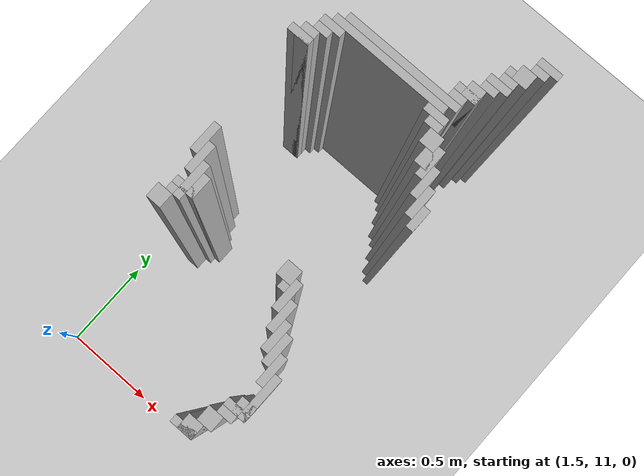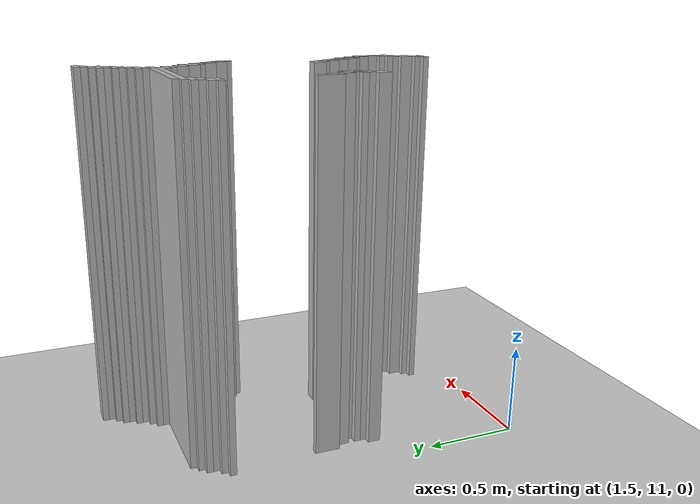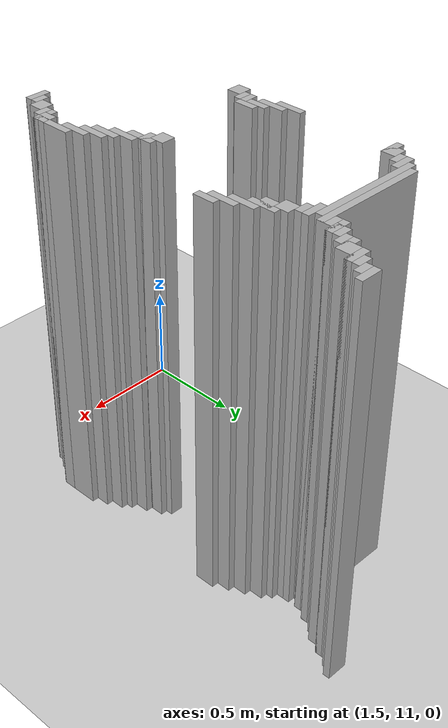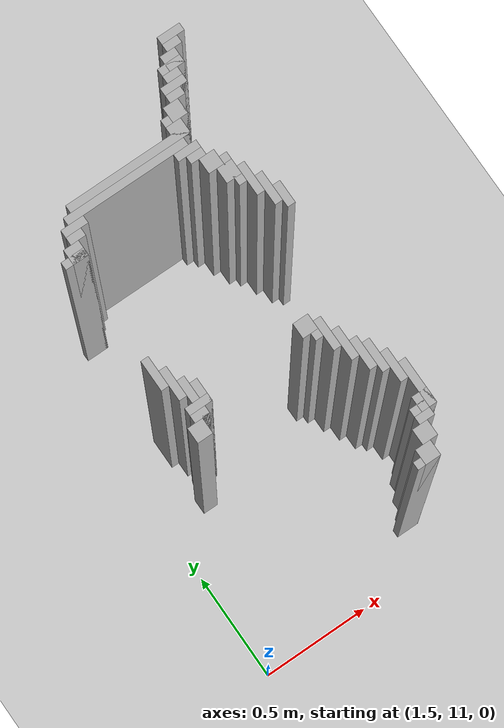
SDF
<sdf version="1.6">
 <world name="slam_world">
  <model name="ground_plane">
   <static>true</static>
   <link name="link">
    <collision name="collision">
     <geometry><plane><normal>0 0 1</normal><size>100 100</size></plane></geometry>
    </collision>
    <visual name="visual">
     <geometry><plane><normal>0 0 1</normal><size>100 100</size></plane></geometry>
     <material>
      <ambient>0.8 0.8 0.8 1</ambient>
      <diffuse>0.8 0.8 0.8 1</diffuse>
      <specular>0.8 0.8 0.8 1</specular>
     </material>
    </visual>
   </link>
  </model>
  <model name="wall_1427">
   <static>true</static>
   <pose>2.488399071925754 13.103248259860788 1.0 0 0 0</pose>
   <link name="link">
    <collision name="collision">
     <geometry><box><size>0.10440835266821345 0.03480278422273782 2.0</size></box></geometry>
    </collision>
    <visual name="visual">
     <geometry><box><size>0.10440835266821345 0.03480278422273782 2.0</size></box></geometry>
     <material><ambient>0.5 0.5 0.5 1</ambient><diffuse>0.7 0.7 0.7 1</diffuse></material>
    </visual>
   </link>
  </model>
  <model name="wall_1442">
   <static>true</static>
   <pose>2.470997679814385 13.06844547563805 1.0 0 0 0</pose>
   <link name="link">
    <collision name="collision">
     <geometry><box><size>0.06960556844547564 0.03480278422273782 2.0</size></box></geometry>
    </collision>
    <visual name="visual">
     <geometry><box><size>0.06960556844547564 0.03480278422273782 2.0</size></box></geometry>
     <material><ambient>0.5 0.5 0.5 1</ambient><diffuse>0.7 0.7 0.7 1</diffuse></material>
    </visual>
   </link>
  </model>
  <model name="wall_1449">
   <static>true</static>
   <pose>2.436194895591647 13.016241299303944 1.0 0 0 0</pose>
   <link name="link">
    <collision name="collision">
     <geometry><box><size>0.06960556844547564 0.06960556844547564 2.0</size></box></geometry>
    </collision>
    <visual name="visual">
     <geometry><box><size>0.06960556844547564 0.06960556844547564 2.0</size></box></geometry>
     <material><ambient>0.5 0.5 0.5 1</ambient><diffuse>0.7 0.7 0.7 1</diffuse></material>
    </visual>
   </link>
  </model>
  <model name="wall_1465">
   <static>true</static>
   <pose>2.4187935034802783 12.998839907192576 1.0 0 0 0</pose>
   <link name="link">
    <collision name="collision">
     <geometry><box><size>0.10440835266821345 0.03480278422273782 2.0</size></box></geometry>
    </collision>
    <visual name="visual">
     <geometry><box><size>0.10440835266821345 0.03480278422273782 2.0</size></box></geometry>
     <material><ambient>0.5 0.5 0.5 1</ambient><diffuse>0.7 0.7 0.7 1</diffuse></material>
    </visual>
   </link>
  </model>
  <model name="wall_1481">
   <static>true</static>
   <pose>2.4013921113689096 12.946635730858468 1.0 0 0 0</pose>
   <link name="link">
    <collision name="collision">
     <geometry><box><size>0.06960556844547564 0.06960556844547564 2.0</size></box></geometry>
    </collision>
    <visual name="visual">
     <geometry><box><size>0.06960556844547564 0.06960556844547564 2.0</size></box></geometry>
     <material><ambient>0.5 0.5 0.5 1</ambient><diffuse>0.7 0.7 0.7 1</diffuse></material>
    </visual>
   </link>
  </model>
  <model name="wall_1497">
   <static>true</static>
   <pose>2.3839907192575405 12.929234338747099 1.0 0 0 0</pose>
   <link name="link">
    <collision name="collision">
     <geometry><box><size>0.10440835266821345 0.03480278422273782 2.0</size></box></geometry>
    </collision>
    <visual name="visual">
     <geometry><box><size>0.10440835266821345 0.03480278422273782 2.0</size></box></geometry>
     <material><ambient>0.5 0.5 0.5 1</ambient><diffuse>0.7 0.7 0.7 1</diffuse></material>
    </visual>
   </link>
  </model>
  <model name="wall_1512">
   <static>true</static>
   <pose>2.3665893271461718 12.894431554524362 1.0 0 0 0</pose>
   <link name="link">
    <collision name="collision">
     <geometry><box><size>0.06960556844547564 0.03480278422273782 2.0</size></box></geometry>
    </collision>
    <visual name="visual">
     <geometry><box><size>0.06960556844547564 0.03480278422273782 2.0</size></box></geometry>
     <material><ambient>0.5 0.5 0.5 1</ambient><diffuse>0.7 0.7 0.7 1</diffuse></material>
    </visual>
   </link>
  </model>
  <model name="wall_1522">
   <static>true</static>
   <pose>2.331786542923434 12.842227378190255 1.0 0 0 0</pose>
   <link name="link">
    <collision name="collision">
     <geometry><box><size>0.06960556844547564 0.06960556844547564 2.0</size></box></geometry>
    </collision>
    <visual name="visual">
     <geometry><box><size>0.06960556844547564 0.06960556844547564 2.0</size></box></geometry>
     <material><ambient>0.5 0.5 0.5 1</ambient><diffuse>0.7 0.7 0.7 1</diffuse></material>
    </visual>
   </link>
  </model>
  <model name="wall_1538">
   <static>true</static>
   <pose>2.3143851508120648 12.824825986078885 1.0 0 0 0</pose>
   <link name="link">
    <collision name="collision">
     <geometry><box><size>0.10440835266821345 0.03480278422273782 2.0</size></box></geometry>
    </collision>
    <visual name="visual">
     <geometry><box><size>0.10440835266821345 0.03480278422273782 2.0</size></box></geometry>
     <material><ambient>0.5 0.5 0.5 1</ambient><diffuse>0.7 0.7 0.7 1</diffuse></material>
    </visual>
   </link>
  </model>
  <model name="wall_1553">
   <static>true</static>
   <pose>2.296983758700696 12.772621809744779 1.0 0 0 0</pose>
   <link name="link">
    <collision name="collision">
     <geometry><box><size>0.06960556844547564 0.06960556844547564 2.0</size></box></geometry>
    </collision>
    <visual name="visual">
     <geometry><box><size>0.06960556844547564 0.06960556844547564 2.0</size></box></geometry>
     <material><ambient>0.5 0.5 0.5 1</ambient><diffuse>0.7 0.7 0.7 1</diffuse></material>
    </visual>
   </link>
  </model>
  <model name="wall_1563">
   <static>true</static>
   <pose>2.053364269141531 12.75522041763341 1.0 0 0 0</pose>
   <link name="link">
    <collision name="collision">
     <geometry><box><size>0.5568445475638051 0.03480278422273782 2.0</size></box></geometry>
    </collision>
    <visual name="visual">
     <geometry><box><size>0.5568445475638051 0.03480278422273782 2.0</size></box></geometry>
     <material><ambient>0.5 0.5 0.5 1</ambient><diffuse>0.7 0.7 0.7 1</diffuse></material>
    </visual>
   </link>
  </model>
  <model name="wall_1576">
   <static>true</static>
   <pose>2.0185614849187936 12.720417633410673 1.0 0 0 0</pose>
   <link name="link">
    <collision name="collision">
     <geometry><box><size>0.5568445475638051 0.03480278422273782 2.0</size></box></geometry>
    </collision>
    <visual name="visual">
     <geometry><box><size>0.5568445475638051 0.03480278422273782 2.0</size></box></geometry>
     <material><ambient>0.5 0.5 0.5 1</ambient><diffuse>0.7 0.7 0.7 1</diffuse></material>
    </visual>
   </link>
  </model>
  <model name="wall_1587">
   <static>true</static>
   <pose>1.75754060324826 12.685614849187935 1.0 0 0 0</pose>
   <link name="link">
    <collision name="collision">
     <geometry><box><size>0.10440835266821345 0.03480278422273782 2.0</size></box></geometry>
    </collision>
    <visual name="visual">
     <geometry><box><size>0.10440835266821345 0.03480278422273782 2.0</size></box></geometry>
     <material><ambient>0.5 0.5 0.5 1</ambient><diffuse>0.7 0.7 0.7 1</diffuse></material>
    </visual>
   </link>
  </model>
  <model name="wall_1588">
   <static>true</static>
   <pose>2.279582366589327 12.685614849187935 1.0 0 0 0</pose>
   <link name="link">
    <collision name="collision">
     <geometry><box><size>0.10440835266821345 0.03480278422273782 2.0</size></box></geometry>
    </collision>
    <visual name="visual">
     <geometry><box><size>0.10440835266821345 0.03480278422273782 2.0</size></box></geometry>
     <material><ambient>0.5 0.5 0.5 1</ambient><diffuse>0.7 0.7 0.7 1</diffuse></material>
    </visual>
   </link>
  </model>
  <model name="wall_1600">
   <static>true</static>
   <pose>1.740139211136891 12.650812064965196 1.0 0 0 0</pose>
   <link name="link">
    <collision name="collision">
     <geometry><box><size>0.06960556844547564 0.03480278422273782 2.0</size></box></geometry>
    </collision>
    <visual name="visual">
     <geometry><box><size>0.06960556844547564 0.03480278422273782 2.0</size></box></geometry>
     <material><ambient>0.5 0.5 0.5 1</ambient><diffuse>0.7 0.7 0.7 1</diffuse></material>
    </visual>
   </link>
  </model>
  <model name="wall_1601">
   <static>true</static>
   <pose>2.296983758700696 12.650812064965196 1.0 0 0 0</pose>
   <link name="link">
    <collision name="collision">
     <geometry><box><size>0.06960556844547564 0.03480278422273782 2.0</size></box></geometry>
    </collision>
    <visual name="visual">
     <geometry><box><size>0.06960556844547564 0.03480278422273782 2.0</size></box></geometry>
     <material><ambient>0.5 0.5 0.5 1</ambient><diffuse>0.7 0.7 0.7 1</diffuse></material>
    </visual>
   </link>
  </model>
  <model name="wall_1611">
   <static>true</static>
   <pose>1.705336426914153 12.59860788863109 1.0 0 0 0</pose>
   <link name="link">
    <collision name="collision">
     <geometry><box><size>0.06960556844547564 0.06960556844547564 2.0</size></box></geometry>
    </collision>
    <visual name="visual">
     <geometry><box><size>0.06960556844547564 0.06960556844547564 2.0</size></box></geometry>
     <material><ambient>0.5 0.5 0.5 1</ambient><diffuse>0.7 0.7 0.7 1</diffuse></material>
    </visual>
   </link>
  </model>
  <model name="wall_1612">
   <static>true</static>
   <pose>2.331786542923434 12.59860788863109 1.0 0 0 0</pose>
   <link name="link">
    <collision name="collision">
     <geometry><box><size>0.06960556844547564 0.06960556844547564 2.0</size></box></geometry>
    </collision>
    <visual name="visual">
     <geometry><box><size>0.06960556844547564 0.06960556844547564 2.0</size></box></geometry>
     <material><ambient>0.5 0.5 0.5 1</ambient><diffuse>0.7 0.7 0.7 1</diffuse></material>
    </visual>
   </link>
  </model>
  <model name="wall_1624">
   <static>true</static>
   <pose>1.6879350348027842 12.581206496519721 1.0 0 0 0</pose>
   <link name="link">
    <collision name="collision">
     <geometry><box><size>0.10440835266821345 0.03480278422273782 2.0</size></box></geometry>
    </collision>
    <visual name="visual">
     <geometry><box><size>0.10440835266821345 0.03480278422273782 2.0</size></box></geometry>
     <material><ambient>0.5 0.5 0.5 1</ambient><diffuse>0.7 0.7 0.7 1</diffuse></material>
    </visual>
   </link>
  </model>
  <model name="wall_1625">
   <static>true</static>
   <pose>2.3839907192575405 12.529002320185615 1.0 0 0 0</pose>
   <link name="link">
    <collision name="collision">
     <geometry><box><size>0.03480278422273782 0.13921113689095127 2.0</size></box></geometry>
    </collision>
    <visual name="visual">
     <geometry><box><size>0.03480278422273782 0.13921113689095127 2.0</size></box></geometry>
     <material><ambient>0.5 0.5 0.5 1</ambient><diffuse>0.7 0.7 0.7 1</diffuse></material>
    </visual>
   </link>
  </model>
  <model name="wall_1637">
   <static>true</static>
   <pose>2.3665893271461718 12.529002320185615 1.0 0 0 0</pose>
   <link name="link">
    <collision name="collision">
     <geometry><box><size>0.06960556844547564 0.06960556844547564 2.0</size></box></geometry>
    </collision>
    <visual name="visual">
     <geometry><box><size>0.06960556844547564 0.06960556844547564 2.0</size></box></geometry>
     <material><ambient>0.5 0.5 0.5 1</ambient><diffuse>0.7 0.7 0.7 1</diffuse></material>
    </visual>
   </link>
  </model>
  <model name="wall_1649">
   <static>true</static>
   <pose>2.4187935034802783 12.459396751740138 1.0 0 0 0</pose>
   <link name="link">
    <collision name="collision">
     <geometry><box><size>0.03480278422273782 0.13921113689095127 2.0</size></box></geometry>
    </collision>
    <visual name="visual">
     <geometry><box><size>0.03480278422273782 0.13921113689095127 2.0</size></box></geometry>
     <material><ambient>0.5 0.5 0.5 1</ambient><diffuse>0.7 0.7 0.7 1</diffuse></material>
    </visual>
   </link>
  </model>
  <model name="wall_1670">
   <static>true</static>
   <pose>2.453596287703016 12.389791183294664 1.0 0 0 0</pose>
   <link name="link">
    <collision name="collision">
     <geometry><box><size>0.03480278422273782 0.13921113689095127 2.0</size></box></geometry>
    </collision>
    <visual name="visual">
     <geometry><box><size>0.03480278422273782 0.13921113689095127 2.0</size></box></geometry>
     <material><ambient>0.5 0.5 0.5 1</ambient><diffuse>0.7 0.7 0.7 1</diffuse></material>
    </visual>
   </link>
  </model>
  <model name="wall_1683">
   <static>true</static>
   <pose>2.488399071925754 12.337587006960556 1.0 0 0 0</pose>
   <link name="link">
    <collision name="collision">
     <geometry><box><size>0.03480278422273782 0.10440835266821345 2.0</size></box></geometry>
    </collision>
    <visual name="visual">
     <geometry><box><size>0.03480278422273782 0.10440835266821345 2.0</size></box></geometry>
     <material><ambient>0.5 0.5 0.5 1</ambient><diffuse>0.7 0.7 0.7 1</diffuse></material>
    </visual>
   </link>
  </model>
  <model name="wall_1786">
   <static>true</static>
   <pose>1.6879350348027842 12.041763341067284 1.0 0 0 0</pose>
   <link name="link">
    <collision name="collision">
     <geometry><box><size>0.03480278422273782 0.13921113689095127 2.0</size></box></geometry>
    </collision>
    <visual name="visual">
     <geometry><box><size>0.03480278422273782 0.13921113689095127 2.0</size></box></geometry>
     <material><ambient>0.5 0.5 0.5 1</ambient><diffuse>0.7 0.7 0.7 1</diffuse></material>
    </visual>
   </link>
  </model>
  <model name="wall_1812">
   <static>true</static>
   <pose>1.722737819025522 11.97215777262181 1.0 0 0 0</pose>
   <link name="link">
    <collision name="collision">
     <geometry><box><size>0.03480278422273782 0.13921113689095127 2.0</size></box></geometry>
    </collision>
    <visual name="visual">
     <geometry><box><size>0.03480278422273782 0.13921113689095127 2.0</size></box></geometry>
     <material><ambient>0.5 0.5 0.5 1</ambient><diffuse>0.7 0.7 0.7 1</diffuse></material>
    </visual>
   </link>
  </model>
  <model name="wall_1835">
   <static>true</static>
   <pose>1.75754060324826 11.885150812064964 1.0 0 0 0</pose>
   <link name="link">
    <collision name="collision">
     <geometry><box><size>0.03480278422273782 0.17401392111368907 2.0</size></box></geometry>
    </collision>
    <visual name="visual">
     <geometry><box><size>0.03480278422273782 0.17401392111368907 2.0</size></box></geometry>
     <material><ambient>0.5 0.5 0.5 1</ambient><diffuse>0.7 0.7 0.7 1</diffuse></material>
    </visual>
   </link>
  </model>
  <model name="wall_1851">
   <static>true</static>
   <pose>1.7923433874709975 11.885150812064964 1.0 0 0 0</pose>
   <link name="link">
    <collision name="collision">
     <geometry><box><size>0.03480278422273782 0.10440835266821345 2.0</size></box></geometry>
    </collision>
    <visual name="visual">
     <geometry><box><size>0.03480278422273782 0.10440835266821345 2.0</size></box></geometry>
     <material><ambient>0.5 0.5 0.5 1</ambient><diffuse>0.7 0.7 0.7 1</diffuse></material>
    </visual>
   </link>
  </model>
  <model name="wall_1866">
   <static>true</static>
   <pose>2.262180974477958 11.867749419953595 1.0 0 0 0</pose>
   <link name="link">
    <collision name="collision">
     <geometry><box><size>0.06960556844547564 0.06960556844547564 2.0</size></box></geometry>
    </collision>
    <visual name="visual">
     <geometry><box><size>0.06960556844547564 0.06960556844547564 2.0</size></box></geometry>
     <material><ambient>0.5 0.5 0.5 1</ambient><diffuse>0.7 0.7 0.7 1</diffuse></material>
    </visual>
   </link>
  </model>
  <model name="wall_1878">
   <static>true</static>
   <pose>1.75754060324826 11.850348027842227 1.0 0 0 0</pose>
   <link name="link">
    <collision name="collision">
     <geometry><box><size>0.10440835266821345 0.03480278422273782 2.0</size></box></geometry>
    </collision>
    <visual name="visual">
     <geometry><box><size>0.10440835266821345 0.03480278422273782 2.0</size></box></geometry>
     <material><ambient>0.5 0.5 0.5 1</ambient><diffuse>0.7 0.7 0.7 1</diffuse></material>
    </visual>
   </link>
  </model>
  <model name="wall_1879">
   <static>true</static>
   <pose>2.3143851508120648 11.79814385150812 1.0 0 0 0</pose>
   <link name="link">
    <collision name="collision">
     <geometry><box><size>0.03480278422273782 0.13921113689095127 2.0</size></box></geometry>
    </collision>
    <visual name="visual">
     <geometry><box><size>0.03480278422273782 0.13921113689095127 2.0</size></box></geometry>
     <material><ambient>0.5 0.5 0.5 1</ambient><diffuse>0.7 0.7 0.7 1</diffuse></material>
    </visual>
   </link>
  </model>
  <model name="wall_1894">
   <static>true</static>
   <pose>1.740139211136891 11.81554524361949 1.0 0 0 0</pose>
   <link name="link">
    <collision name="collision">
     <geometry><box><size>0.06960556844547564 0.03480278422273782 2.0</size></box></geometry>
    </collision>
    <visual name="visual">
     <geometry><box><size>0.06960556844547564 0.03480278422273782 2.0</size></box></geometry>
     <material><ambient>0.5 0.5 0.5 1</ambient><diffuse>0.7 0.7 0.7 1</diffuse></material>
    </visual>
   </link>
  </model>
  <model name="wall_1895">
   <static>true</static>
   <pose>2.296983758700696 11.81554524361949 1.0 0 0 0</pose>
   <link name="link">
    <collision name="collision">
     <geometry><box><size>0.06960556844547564 0.03480278422273782 2.0</size></box></geometry>
    </collision>
    <visual name="visual">
     <geometry><box><size>0.06960556844547564 0.03480278422273782 2.0</size></box></geometry>
     <material><ambient>0.5 0.5 0.5 1</ambient><diffuse>0.7 0.7 0.7 1</diffuse></material>
    </visual>
   </link>
  </model>
  <model name="wall_1910">
   <static>true</static>
   <pose>1.705336426914153 11.763341067285383 1.0 0 0 0</pose>
   <link name="link">
    <collision name="collision">
     <geometry><box><size>0.06960556844547564 0.06960556844547564 2.0</size></box></geometry>
    </collision>
    <visual name="visual">
     <geometry><box><size>0.06960556844547564 0.06960556844547564 2.0</size></box></geometry>
     <material><ambient>0.5 0.5 0.5 1</ambient><diffuse>0.7 0.7 0.7 1</diffuse></material>
    </visual>
   </link>
  </model>
  <model name="wall_1911">
   <static>true</static>
   <pose>2.3491879350348026 11.728538283062644 1.0 0 0 0</pose>
   <link name="link">
    <collision name="collision">
     <geometry><box><size>0.03480278422273782 0.13921113689095127 2.0</size></box></geometry>
    </collision>
    <visual name="visual">
     <geometry><box><size>0.03480278422273782 0.13921113689095127 2.0</size></box></geometry>
     <material><ambient>0.5 0.5 0.5 1</ambient><diffuse>0.7 0.7 0.7 1</diffuse></material>
    </visual>
   </link>
  </model>
  <model name="wall_1927">
   <static>true</static>
   <pose>2.3839907192575405 11.658932714617169 1.0 0 0 0</pose>
   <link name="link">
    <collision name="collision">
     <geometry><box><size>0.03480278422273782 0.13921113689095127 2.0</size></box></geometry>
    </collision>
    <visual name="visual">
     <geometry><box><size>0.03480278422273782 0.13921113689095127 2.0</size></box></geometry>
     <material><ambient>0.5 0.5 0.5 1</ambient><diffuse>0.7 0.7 0.7 1</diffuse></material>
    </visual>
   </link>
  </model>
  <model name="wall_1943">
   <static>true</static>
   <pose>2.4187935034802783 11.624129930394432 1.0 0 0 0</pose>
   <link name="link">
    <collision name="collision">
     <geometry><box><size>0.03480278422273782 0.13921113689095127 2.0</size></box></geometry>
    </collision>
    <visual name="visual">
     <geometry><box><size>0.03480278422273782 0.13921113689095127 2.0</size></box></geometry>
     <material><ambient>0.5 0.5 0.5 1</ambient><diffuse>0.7 0.7 0.7 1</diffuse></material>
    </visual>
   </link>
  </model>
  <model name="wall_1968">
   <static>true</static>
   <pose>2.453596287703016 11.554524361948955 1.0 0 0 0</pose>
   <link name="link">
    <collision name="collision">
     <geometry><box><size>0.03480278422273782 0.13921113689095127 2.0</size></box></geometry>
    </collision>
    <visual name="visual">
     <geometry><box><size>0.03480278422273782 0.13921113689095127 2.0</size></box></geometry>
     <material><ambient>0.5 0.5 0.5 1</ambient><diffuse>0.7 0.7 0.7 1</diffuse></material>
    </visual>
   </link>
  </model>
  <model name="wall_1993">
   <static>true</static>
   <pose>2.488399071925754 11.450116009280743 1.0 0 0 0</pose>
   <link name="link">
    <collision name="collision">
     <geometry><box><size>0.03480278422273782 0.2088167053364269 2.0</size></box></geometry>
    </collision>
    <visual name="visual">
     <geometry><box><size>0.03480278422273782 0.2088167053364269 2.0</size></box></geometry>
     <material><ambient>0.5 0.5 0.5 1</ambient><diffuse>0.7 0.7 0.7 1</diffuse></material>
    </visual>
   </link>
  </model>
  <model name="wall_2052">
   <static>true</static>
   <pose>2.470997679814385 11.380510440835266 1.0 0 0 0</pose>
   <link name="link">
    <collision name="collision">
     <geometry><box><size>0.06960556844547564 0.06960556844547564 2.0</size></box></geometry>
    </collision>
    <visual name="visual">
     <geometry><box><size>0.06960556844547564 0.06960556844547564 2.0</size></box></geometry>
     <material><ambient>0.5 0.5 0.5 1</ambient><diffuse>0.7 0.7 0.7 1</diffuse></material>
    </visual>
   </link>
  </model>
  <model name="wall_2069">
   <static>true</static>
   <pose>2.453596287703016 11.363109048723897 1.0 0 0 0</pose>
   <link name="link">
    <collision name="collision">
     <geometry><box><size>0.10440835266821345 0.03480278422273782 2.0</size></box></geometry>
    </collision>
    <visual name="visual">
     <geometry><box><size>0.10440835266821345 0.03480278422273782 2.0</size></box></geometry>
     <material><ambient>0.5 0.5 0.5 1</ambient><diffuse>0.7 0.7 0.7 1</diffuse></material>
    </visual>
   </link>
  </model>
  <model name="wall_2084">
   <static>true</static>
   <pose>2.436194895591647 11.32830626450116 1.0 0 0 0</pose>
   <link name="link">
    <collision name="collision">
     <geometry><box><size>0.06960556844547564 0.03480278422273782 2.0</size></box></geometry>
    </collision>
    <visual name="visual">
     <geometry><box><size>0.06960556844547564 0.03480278422273782 2.0</size></box></geometry>
     <material><ambient>0.5 0.5 0.5 1</ambient><diffuse>0.7 0.7 0.7 1</diffuse></material>
    </visual>
   </link>
  </model>
  <model name="wall_2094">
   <static>true</static>
   <pose>2.4013921113689096 11.276102088167052 1.0 0 0 0</pose>
   <link name="link">
    <collision name="collision">
     <geometry><box><size>0.06960556844547564 0.06960556844547564 2.0</size></box></geometry>
    </collision>
    <visual name="visual">
     <geometry><box><size>0.06960556844547564 0.06960556844547564 2.0</size></box></geometry>
     <material><ambient>0.5 0.5 0.5 1</ambient><diffuse>0.7 0.7 0.7 1</diffuse></material>
    </visual>
   </link>
  </model>
  <model name="wall_2111">
   <static>true</static>
   <pose>2.3665893271461718 11.206496519721577 1.0 0 0 0</pose>
   <link name="link">
    <collision name="collision">
     <geometry><box><size>0.06960556844547564 0.06960556844547564 2.0</size></box></geometry>
    </collision>
    <visual name="visual">
     <geometry><box><size>0.06960556844547564 0.06960556844547564 2.0</size></box></geometry>
     <material><ambient>0.5 0.5 0.5 1</ambient><diffuse>0.7 0.7 0.7 1</diffuse></material>
    </visual>
   </link>
  </model>
  <model name="wall_2128">
   <static>true</static>
   <pose>2.3491879350348026 11.189095127610209 1.0 0 0 0</pose>
   <link name="link">
    <collision name="collision">
     <geometry><box><size>0.10440835266821345 0.03480278422273782 2.0</size></box></geometry>
    </collision>
    <visual name="visual">
     <geometry><box><size>0.10440835266821345 0.03480278422273782 2.0</size></box></geometry>
     <material><ambient>0.5 0.5 0.5 1</ambient><diffuse>0.7 0.7 0.7 1</diffuse></material>
    </visual>
   </link>
  </model>
 </world>
</sdf>
